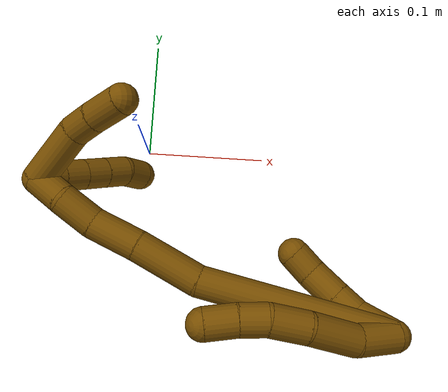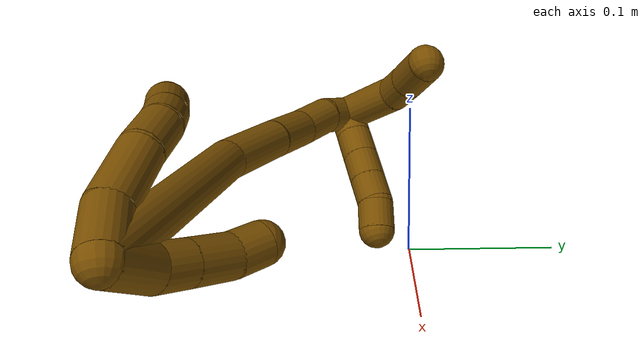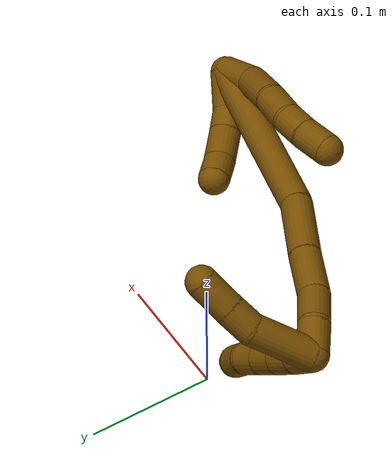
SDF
<sdf version="1.7">
 <world name="default">
  <model name="12">
   <static>0</static>
   <link name="12">
    <collision name="collision-cylinder-e_1_2_8">
     <pose>-0.006048 -0.001485 0.015662 0.094556 -0.367036 -0.017563</pose>
     <geometry><cylinder><radius>0.0125</radius><length>0.03371</length></cylinder></geometry>
     <surface>
      <friction><ode><mu>1.16</mu><mu2>1.16</mu2><slip1>0</slip1><slip2>0</slip2></ode></friction>
      <contact><ode><kp>1e+06</kp><kd>1</kd><max_vel>0</max_vel><min_depth>0.001</min_depth></ode></contact>
     </surface>
    </collision>
    <visual name="visual-cylinder-e_1_2_8">
     <pose>-0.006048 -0.001485 0.015662 0.094556 -0.367036 -0.017563</pose>
     <geometry><cylinder><radius>0.0125</radius><length>0.03371</length></cylinder></geometry>
     <material><ambient>0.466667 0.301961 0 1</ambient></material>
    </visual>
    <collision name="collision-cylinder-e_2_8_9">
     <pose>-0.020369 0.001399 0.049469 -0.23634 -0.417221 0.050255</pose>
     <geometry><cylinder><radius>0.0125</radius><length>0.040829</length></cylinder></geometry>
     <surface>
      <friction><ode><mu>1.16</mu><mu2>1.16</mu2><slip1>0</slip1><slip2>0</slip2></ode></friction>
      <contact><ode><kp>1e+06</kp><kd>1</kd><max_vel>0</max_vel><min_depth>0.001</min_depth></ode></contact>
     </surface>
    </collision>
    <visual name="visual-cylinder-e_2_8_9">
     <pose>-0.020369 0.001399 0.049469 -0.23634 -0.417221 0.050255</pose>
     <geometry><cylinder><radius>0.0125</radius><length>0.040829</length></cylinder></geometry>
     <material><ambient>0.466667 0.301961 0 1</ambient></material>
    </visual>
    <collision name="collision-cylinder-e_3_9_10">
     <pose>-0.037101 0.007525 0.079528 -0.14632 -0.612325 0.046326</pose>
     <geometry><cylinder><radius>0.0125</radius><length>0.029434</length></cylinder></geometry>
     <surface>
      <friction><ode><mu>1.16</mu><mu2>1.16</mu2><slip1>0</slip1><slip2>0</slip2></ode></friction>
      <contact><ode><kp>1e+06</kp><kd>1</kd><max_vel>0</max_vel><min_depth>0.001</min_depth></ode></contact>
     </surface>
    </collision>
    <visual name="visual-cylinder-e_3_9_10">
     <pose>-0.037101 0.007525 0.079528 -0.14632 -0.612325 0.046326</pose>
     <geometry><cylinder><radius>0.0125</radius><length>0.029434</length></cylinder></geometry>
     <material><ambient>0.466667 0.301961 0 1</ambient></material>
    </visual>
    <collision name="collision-cylinder-e_4_10_11">
     <pose>-0.052371 0.008098 0.099502 0.145734 -0.696453 -0.052986</pose>
     <geometry><cylinder><radius>0.0125</radius><length>0.021237</length></cylinder></geometry>
     <surface>
      <friction><ode><mu>1.16</mu><mu2>1.16</mu2><slip1>0</slip1><slip2>0</slip2></ode></friction>
      <contact><ode><kp>1e+06</kp><kd>1</kd><max_vel>0</max_vel><min_depth>0.001</min_depth></ode></contact>
     </surface>
    </collision>
    <visual name="visual-cylinder-e_4_10_11">
     <pose>-0.052371 0.008098 0.099502 0.145734 -0.696453 -0.052986</pose>
     <geometry><cylinder><radius>0.0125</radius><length>0.021237</length></cylinder></geometry>
     <material><ambient>0.466667 0.301961 0 1</ambient></material>
    </visual>
    <collision name="collision-cylinder-e_5_11_6">
     <pose>-0.066864 0.004224 0.11691 0.280277 -0.668327 -0.097872</pose>
     <geometry><cylinder><radius>0.0125</radius><length>0.02479</length></cylinder></geometry>
     <surface>
      <friction><ode><mu>1.16</mu><mu2>1.16</mu2><slip1>0</slip1><slip2>0</slip2></ode></friction>
      <contact><ode><kp>1e+06</kp><kd>1</kd><max_vel>0</max_vel><min_depth>0.001</min_depth></ode></contact>
     </surface>
    </collision>
    <visual name="visual-cylinder-e_5_11_6">
     <pose>-0.066864 0.004224 0.11691 0.280277 -0.668327 -0.097872</pose>
     <geometry><cylinder><radius>0.0125</radius><length>0.02479</length></cylinder></geometry>
     <material><ambient>0.466667 0.301961 0 1</ambient></material>
    </visual>
    <collision name="collision-cylinder-e_1_2_12">
     <pose>-0.015594 0.003884 0.0028 -0.94623 -1.27291 0.723341</pose>
     <geometry><cylinder><radius>0.0125</radius><length>0.032625</length></cylinder></geometry>
     <surface>
      <friction><ode><mu>1.16</mu><mu2>1.16</mu2><slip1>0</slip1><slip2>0</slip2></ode></friction>
      <contact><ode><kp>1e+06</kp><kd>1</kd><max_vel>0</max_vel><min_depth>0.001</min_depth></ode></contact>
     </surface>
    </collision>
    <visual name="visual-cylinder-e_1_2_12">
     <pose>-0.015594 0.003884 0.0028 -0.94623 -1.27291 0.723341</pose>
     <geometry><cylinder><radius>0.0125</radius><length>0.032625</length></cylinder></geometry>
     <material><ambient>0.466667 0.301961 0 1</ambient></material>
    </visual>
    <collision name="collision-cylinder-e_2_12_13">
     <pose>-0.039312 0.013032 0.008618 -1.05021 -0.929249 0.565228</pose>
     <geometry><cylinder><radius>0.0125</radius><length>0.020281</length></cylinder></geometry>
     <surface>
      <friction><ode><mu>1.16</mu><mu2>1.16</mu2><slip1>0</slip1><slip2>0</slip2></ode></friction>
      <contact><ode><kp>1e+06</kp><kd>1</kd><max_vel>0</max_vel><min_depth>0.001</min_depth></ode></contact>
     </surface>
    </collision>
    <visual name="visual-cylinder-e_2_12_13">
     <pose>-0.039312 0.013032 0.008618 -1.05021 -0.929249 0.565228</pose>
     <geometry><cylinder><radius>0.0125</radius><length>0.020281</length></cylinder></geometry>
     <material><ambient>0.466667 0.301961 0 1</ambient></material>
    </visual>
    <collision name="collision-cylinder-e_3_13_14">
     <pose>-0.058026 0.025553 0.015687 -1.0616 -0.90536 0.556186</pose>
     <geometry><cylinder><radius>0.0125</radius><length>0.026923</length></cylinder></geometry>
     <surface>
      <friction><ode><mu>1.16</mu><mu2>1.16</mu2><slip1>0</slip1><slip2>0</slip2></ode></friction>
      <contact><ode><kp>1e+06</kp><kd>1</kd><max_vel>0</max_vel><min_depth>0.001</min_depth></ode></contact>
     </surface>
    </collision>
    <visual name="visual-cylinder-e_3_13_14">
     <pose>-0.058026 0.025553 0.015687 -1.0616 -0.90536 0.556186</pose>
     <geometry><cylinder><radius>0.0125</radius><length>0.026923</length></cylinder></geometry>
     <material><ambient>0.466667 0.301961 0 1</ambient></material>
    </visual>
    <collision name="collision-cylinder-e_4_14_5">
     <pose>-0.074991 0.039307 0.024081 -0.981608 -0.684394 0.376231</pose>
     <geometry><cylinder><radius>0.0125</radius><length>0.020172</length></cylinder></geometry>
     <surface>
      <friction><ode><mu>1.16</mu><mu2>1.16</mu2><slip1>0</slip1><slip2>0</slip2></ode></friction>
      <contact><ode><kp>1e+06</kp><kd>1</kd><max_vel>0</max_vel><min_depth>0.001</min_depth></ode></contact>
     </surface>
    </collision>
    <visual name="visual-cylinder-e_4_14_5">
     <pose>-0.074991 0.039307 0.024081 -0.981608 -0.684394 0.376231</pose>
     <geometry><cylinder><radius>0.0125</radius><length>0.020172</length></cylinder></geometry>
     <material><ambient>0.466667 0.301961 0 1</ambient></material>
    </visual>
    <collision name="collision-cylinder-e_1_2_15">
     <pose>-0.055351 0.010695 0.050537 -0.208543 -0.819922 0.090897</pose>
     <geometry><cylinder><radius>0.0125</radius><length>0.151421</length></cylinder></geometry>
     <surface>
      <friction><ode><mu>1.16</mu><mu2>1.16</mu2><slip1>0</slip1><slip2>0</slip2></ode></friction>
      <contact><ode><kp>1e+06</kp><kd>1</kd><max_vel>0</max_vel><min_depth>0.001</min_depth></ode></contact>
     </surface>
    </collision>
    <visual name="visual-cylinder-e_1_2_15">
     <pose>-0.055351 0.010695 0.050537 -0.208543 -0.819922 0.090897</pose>
     <geometry><cylinder><radius>0.0125</radius><length>0.151421</length></cylinder></geometry>
     <material><ambient>0.466667 0.301961 0 1</ambient></material>
    </visual>
    <collision name="collision-cylinder-e_2_15_16">
     <pose>-0.129869 0.03133 0.116325 -0.577625 -0.811089 0.253763</pose>
     <geometry><cylinder><radius>0.0125</radius><length>0.052868</length></cylinder></geometry>
     <surface>
      <friction><ode><mu>1.16</mu><mu2>1.16</mu2><slip1>0</slip1><slip2>0</slip2></ode></friction>
      <contact><ode><kp>1e+06</kp><kd>1</kd><max_vel>0</max_vel><min_depth>0.001</min_depth></ode></contact>
     </surface>
    </collision>
    <visual name="visual-cylinder-e_2_15_16">
     <pose>-0.129869 0.03133 0.116325 -0.577625 -0.811089 0.253763</pose>
     <geometry><cylinder><radius>0.0125</radius><length>0.052868</length></cylinder></geometry>
     <material><ambient>0.466667 0.301961 0 1</ambient></material>
    </visual>
    <collision name="collision-cylinder-e_3_16_17">
     <pose>-0.163662 0.047363 0.142501 -0.508711 -0.86332 0.23838</pose>
     <geometry><cylinder><radius>0.0125</radius><length>0.038493</length></cylinder></geometry>
     <surface>
      <friction><ode><mu>1.16</mu><mu2>1.16</mu2><slip1>0</slip1><slip2>0</slip2></ode></friction>
      <contact><ode><kp>1e+06</kp><kd>1</kd><max_vel>0</max_vel><min_depth>0.001</min_depth></ode></contact>
     </surface>
    </collision>
    <visual name="visual-cylinder-e_3_16_17">
     <pose>-0.163662 0.047363 0.142501 -0.508711 -0.86332 0.23838</pose>
     <geometry><cylinder><radius>0.0125</radius><length>0.038493</length></cylinder></geometry>
     <material><ambient>0.466667 0.301961 0 1</ambient></material>
    </visual>
    <collision name="collision-cylinder-e_4_17_18">
     <pose>-0.188081 0.061283 0.162273 -0.724401 -0.69211 0.271567</pose>
     <geometry><cylinder><radius>0.0125</radius><length>0.030686</length></cylinder></geometry>
     <surface>
      <friction><ode><mu>1.16</mu><mu2>1.16</mu2><slip1>0</slip1><slip2>0</slip2></ode></friction>
      <contact><ode><kp>1e+06</kp><kd>1</kd><max_vel>0</max_vel><min_depth>0.001</min_depth></ode></contact>
     </surface>
    </collision>
    <visual name="visual-cylinder-e_4_17_18">
     <pose>-0.188081 0.061283 0.162273 -0.724401 -0.69211 0.271567</pose>
     <geometry><cylinder><radius>0.0125</radius><length>0.030686</length></cylinder></geometry>
     <material><ambient>0.466667 0.301961 0 1</ambient></material>
    </visual>
    <collision name="collision-cylinder-e_5_18_1">
     <pose>-0.208491 0.075266 0.176153 -0.885185 -0.928129 0.465835</pose>
     <geometry><cylinder><radius>0.0125</radius><length>0.026531</length></cylinder></geometry>
     <surface>
      <friction><ode><mu>1.16</mu><mu2>1.16</mu2><slip1>0</slip1><slip2>0</slip2></ode></friction>
      <contact><ode><kp>1e+06</kp><kd>1</kd><max_vel>0</max_vel><min_depth>0.001</min_depth></ode></contact>
     </surface>
    </collision>
    <visual name="visual-cylinder-e_5_18_1">
     <pose>-0.208491 0.075266 0.176153 -0.885185 -0.928129 0.465835</pose>
     <geometry><cylinder><radius>0.0125</radius><length>0.026531</length></cylinder></geometry>
     <material><ambient>0.466667 0.301961 0 1</ambient></material>
    </visual>
    <collision name="collision-cylinder-e_1_1_19">
     <pose>-0.219242 0.082706 0.171271 -3.0126 -0.013169 0.203202</pose>
     <geometry><cylinder><radius>0.0125</radius><length>0.02</length></cylinder></geometry>
     <surface>
      <friction><ode><mu>1.16</mu><mu2>1.16</mu2><slip1>0</slip1><slip2>0</slip2></ode></friction>
      <contact><ode><kp>1e+06</kp><kd>1</kd><max_vel>0</max_vel><min_depth>0.001</min_depth></ode></contact>
     </surface>
    </collision>
    <visual name="visual-cylinder-e_1_1_19">
     <pose>-0.219242 0.082706 0.171271 -3.0126 -0.013169 0.203202</pose>
     <geometry><cylinder><radius>0.0125</radius><length>0.02</length></cylinder></geometry>
     <material><ambient>0.466667 0.301961 0 1</ambient></material>
    </visual>
    <collision name="collision-cylinder-e_2_19_20">
     <pose>-0.218977 0.085094 0.151423 -3.03111 0.039636 -0.688352</pose>
     <geometry><cylinder><radius>0.0125</radius><length>0.02</length></cylinder></geometry>
     <surface>
      <friction><ode><mu>1.16</mu><mu2>1.16</mu2><slip1>0</slip1><slip2>0</slip2></ode></friction>
      <contact><ode><kp>1e+06</kp><kd>1</kd><max_vel>0</max_vel><min_depth>0.001</min_depth></ode></contact>
     </surface>
    </collision>
    <visual name="visual-cylinder-e_2_19_20">
     <pose>-0.218977 0.085094 0.151423 -3.03111 0.039636 -0.688352</pose>
     <geometry><cylinder><radius>0.0125</radius><length>0.02</length></cylinder></geometry>
     <material><ambient>0.466667 0.301961 0 1</ambient></material>
    </visual>
    <collision name="collision-cylinder-e_3_20_21">
     <pose>-0.218142 0.087315 0.131565 -3.02925 0.043886 -0.744222</pose>
     <geometry><cylinder><radius>0.0125</radius><length>0.02</length></cylinder></geometry>
     <surface>
      <friction><ode><mu>1.16</mu><mu2>1.16</mu2><slip1>0</slip1><slip2>0</slip2></ode></friction>
      <contact><ode><kp>1e+06</kp><kd>1</kd><max_vel>0</max_vel><min_depth>0.001</min_depth></ode></contact>
     </surface>
    </collision>
    <visual name="visual-cylinder-e_3_20_21">
     <pose>-0.218142 0.087315 0.131565 -3.02925 0.043886 -0.744222</pose>
     <geometry><cylinder><radius>0.0125</radius><length>0.02</length></cylinder></geometry>
     <material><ambient>0.466667 0.301961 0 1</ambient></material>
    </visual>
    <collision name="collision-cylinder-e_4_21_22">
     <pose>-0.217191 0.089565 0.111715 -3.02825 0.051328 -0.849832</pose>
     <geometry><cylinder><radius>0.0125</radius><length>0.02</length></cylinder></geometry>
     <surface>
      <friction><ode><mu>1.16</mu><mu2>1.16</mu2><slip1>0</slip1><slip2>0</slip2></ode></friction>
      <contact><ode><kp>1e+06</kp><kd>1</kd><max_vel>0</max_vel><min_depth>0.001</min_depth></ode></contact>
     </surface>
    </collision>
    <visual name="visual-cylinder-e_4_21_22">
     <pose>-0.217191 0.089565 0.111715 -3.02825 0.051328 -0.849832</pose>
     <geometry><cylinder><radius>0.0125</radius><length>0.02</length></cylinder></geometry>
     <material><ambient>0.466667 0.301961 0 1</ambient></material>
    </visual>
    <collision name="collision-cylinder-e_5_22_4">
     <pose>-0.217721 0.08925 0.091952 2.99588 -0.104557 -1.24399</pose>
     <geometry><cylinder><radius>0.0125</radius><length>0.02</length></cylinder></geometry>
     <surface>
      <friction><ode><mu>1.16</mu><mu2>1.16</mu2><slip1>0</slip1><slip2>0</slip2></ode></friction>
      <contact><ode><kp>1e+06</kp><kd>1</kd><max_vel>0</max_vel><min_depth>0.001</min_depth></ode></contact>
     </surface>
    </collision>
    <visual name="visual-cylinder-e_5_22_4">
     <pose>-0.217721 0.08925 0.091952 2.99588 -0.104557 -1.24399</pose>
     <geometry><cylinder><radius>0.0125</radius><length>0.02</length></cylinder></geometry>
     <material><ambient>0.466667 0.301961 0 1</ambient></material>
    </visual>
    <collision name="collision-cylinder-e_1_1_23">
     <pose>-0.205396 0.101667 0.17584 -1.82896 0.579787 -0.738999</pose>
     <geometry><cylinder><radius>0.0125</radius><length>0.050066</length></cylinder></geometry>
     <surface>
      <friction><ode><mu>1.16</mu><mu2>1.16</mu2><slip1>0</slip1><slip2>0</slip2></ode></friction>
      <contact><ode><kp>1e+06</kp><kd>1</kd><max_vel>0</max_vel><min_depth>0.001</min_depth></ode></contact>
     </surface>
    </collision>
    <visual name="visual-cylinder-e_1_1_23">
     <pose>-0.205396 0.101667 0.17584 -1.82896 0.579787 -0.738999</pose>
     <geometry><cylinder><radius>0.0125</radius><length>0.050066</length></cylinder></geometry>
     <material><ambient>0.466667 0.301961 0 1</ambient></material>
    </visual>
    <collision name="collision-cylinder-e_2_23_24">
     <pose>-0.183104 0.128154 0.168228 -1.9191 0.912217 -1.22159</pose>
     <geometry><cylinder><radius>0.0125</radius><length>0.021692</length></cylinder></geometry>
     <surface>
      <friction><ode><mu>1.16</mu><mu2>1.16</mu2><slip1>0</slip1><slip2>0</slip2></ode></friction>
      <contact><ode><kp>1e+06</kp><kd>1</kd><max_vel>0</max_vel><min_depth>0.001</min_depth></ode></contact>
     </surface>
    </collision>
    <visual name="visual-cylinder-e_2_23_24">
     <pose>-0.183104 0.128154 0.168228 -1.9191 0.912217 -1.22159</pose>
     <geometry><cylinder><radius>0.0125</radius><length>0.021692</length></cylinder></geometry>
     <material><ambient>0.466667 0.301961 0 1</ambient></material>
    </visual>
    <collision name="collision-cylinder-e_3_24_3">
     <pose>-0.162956 0.141876 0.162874 -1.96227 0.960309 -1.32288</pose>
     <geometry><cylinder><radius>0.0125</radius><length>0.028242</length></cylinder></geometry>
     <surface>
      <friction><ode><mu>1.16</mu><mu2>1.16</mu2><slip1>0</slip1><slip2>0</slip2></ode></friction>
      <contact><ode><kp>1e+06</kp><kd>1</kd><max_vel>0</max_vel><min_depth>0.001</min_depth></ode></contact>
     </surface>
    </collision>
    <visual name="visual-cylinder-e_3_24_3">
     <pose>-0.162956 0.141876 0.162874 -1.96227 0.960309 -1.32288</pose>
     <geometry><cylinder><radius>0.0125</radius><length>0.028242</length></cylinder></geometry>
     <material><ambient>0.466667 0.301961 0 1</ambient></material>
    </visual>
    <collision name="collision-sphere-3">
     <pose>-0.151386 0.149359 0.159785 0 -0 0</pose>
     <geometry><sphere><radius>0.0125</radius></sphere></geometry>
     <surface>
      <friction><ode><mu>1.16</mu><mu2>1.16</mu2><slip1>0</slip1><slip2>0</slip2></ode></friction>
      <contact><ode><kp>1e+06</kp><kd>1</kd><max_vel>0</max_vel><min_depth>0.001</min_depth></ode></contact>
     </surface>
    </collision>
    <visual name="visual-sphere-3">
     <pose>-0.151386 0.149359 0.159785 0 -0 0</pose>
     <geometry><sphere><radius>0.0125</radius></sphere></geometry>
     <material><ambient>0.466667 0.301961 0 1</ambient></material>
    </visual>
    <collision name="collision-sphere-24">
     <pose>-0.174527 0.134394 0.165963 0 -0 0</pose>
     <geometry><sphere><radius>0.0125</radius></sphere></geometry>
     <surface>
      <friction><ode><mu>1.16</mu><mu2>1.16</mu2><slip1>0</slip1><slip2>0</slip2></ode></friction>
      <contact><ode><kp>1e+06</kp><kd>1</kd><max_vel>0</max_vel><min_depth>0.001</min_depth></ode></contact>
     </surface>
    </collision>
    <visual name="visual-sphere-24">
     <pose>-0.174527 0.134394 0.165963 0 -0 0</pose>
     <geometry><sphere><radius>0.0125</radius></sphere></geometry>
     <material><ambient>0.466667 0.301961 0 1</ambient></material>
    </visual>
    <collision name="collision-sphere-23">
     <pose>-0.191682 0.121915 0.170494 0 -0 0</pose>
     <geometry><sphere><radius>0.0125</radius></sphere></geometry>
     <surface>
      <friction><ode><mu>1.16</mu><mu2>1.16</mu2><slip1>0</slip1><slip2>0</slip2></ode></friction>
      <contact><ode><kp>1e+06</kp><kd>1</kd><max_vel>0</max_vel><min_depth>0.001</min_depth></ode></contact>
     </surface>
    </collision>
    <visual name="visual-sphere-23">
     <pose>-0.191682 0.121915 0.170494 0 -0 0</pose>
     <geometry><sphere><radius>0.0125</radius></sphere></geometry>
     <material><ambient>0.466667 0.301961 0 1</ambient></material>
    </visual>
    <collision name="collision-sphere-4">
     <pose>-0.218765 0.087806 0.082112 0 -0 0</pose>
     <geometry><sphere><radius>0.0125</radius></sphere></geometry>
     <surface>
      <friction><ode><mu>1.16</mu><mu2>1.16</mu2><slip1>0</slip1><slip2>0</slip2></ode></friction>
      <contact><ode><kp>1e+06</kp><kd>1</kd><max_vel>0</max_vel><min_depth>0.001</min_depth></ode></contact>
     </surface>
    </collision>
    <visual name="visual-sphere-4">
     <pose>-0.218765 0.087806 0.082112 0 -0 0</pose>
     <geometry><sphere><radius>0.0125</radius></sphere></geometry>
     <material><ambient>0.466667 0.301961 0 1</ambient></material>
    </visual>
    <collision name="collision-sphere-22">
     <pose>-0.216678 0.090694 0.101792 0 -0 0</pose>
     <geometry><sphere><radius>0.0125</radius></sphere></geometry>
     <surface>
      <friction><ode><mu>1.16</mu><mu2>1.16</mu2><slip1>0</slip1><slip2>0</slip2></ode></friction>
      <contact><ode><kp>1e+06</kp><kd>1</kd><max_vel>0</max_vel><min_depth>0.001</min_depth></ode></contact>
     </surface>
    </collision>
    <visual name="visual-sphere-22">
     <pose>-0.216678 0.090694 0.101792 0 -0 0</pose>
     <geometry><sphere><radius>0.0125</radius></sphere></geometry>
     <material><ambient>0.466667 0.301961 0 1</ambient></material>
    </visual>
    <collision name="collision-sphere-21">
     <pose>-0.217704 0.088435 0.121637 0 -0 0</pose>
     <geometry><sphere><radius>0.0125</radius></sphere></geometry>
     <surface>
      <friction><ode><mu>1.16</mu><mu2>1.16</mu2><slip1>0</slip1><slip2>0</slip2></ode></friction>
      <contact><ode><kp>1e+06</kp><kd>1</kd><max_vel>0</max_vel><min_depth>0.001</min_depth></ode></contact>
     </surface>
    </collision>
    <visual name="visual-sphere-21">
     <pose>-0.217704 0.088435 0.121637 0 -0 0</pose>
     <geometry><sphere><radius>0.0125</radius></sphere></geometry>
     <material><ambient>0.466667 0.301961 0 1</ambient></material>
    </visual>
    <collision name="collision-sphere-20">
     <pose>-0.218581 0.086195 0.141492 0 -0 0</pose>
     <geometry><sphere><radius>0.0125</radius></sphere></geometry>
     <surface>
      <friction><ode><mu>1.16</mu><mu2>1.16</mu2><slip1>0</slip1><slip2>0</slip2></ode></friction>
      <contact><ode><kp>1e+06</kp><kd>1</kd><max_vel>0</max_vel><min_depth>0.001</min_depth></ode></contact>
     </surface>
    </collision>
    <visual name="visual-sphere-20">
     <pose>-0.218581 0.086195 0.141492 0 -0 0</pose>
     <geometry><sphere><radius>0.0125</radius></sphere></geometry>
     <material><ambient>0.466667 0.301961 0 1</ambient></material>
    </visual>
    <collision name="collision-sphere-6">
     <pose>-0.074545 0.001533 0.126258 0 -0 0</pose>
     <geometry><sphere><radius>0.0125</radius></sphere></geometry>
     <surface>
      <friction><ode><mu>1.16</mu><mu2>1.16</mu2><slip1>0</slip1><slip2>0</slip2></ode></friction>
      <contact><ode><kp>1e+06</kp><kd>1</kd><max_vel>0</max_vel><min_depth>0.001</min_depth></ode></contact>
     </surface>
    </collision>
    <visual name="visual-sphere-6">
     <pose>-0.074545 0.001533 0.126258 0 -0 0</pose>
     <geometry><sphere><radius>0.0125</radius></sphere></geometry>
     <material><ambient>0.466667 0.301961 0 1</ambient></material>
    </visual>
    <collision name="collision-sphere-11">
     <pose>-0.059183 0.006915 0.107561 0 -0 0</pose>
     <geometry><sphere><radius>0.0125</radius></sphere></geometry>
     <surface>
      <friction><ode><mu>1.16</mu><mu2>1.16</mu2><slip1>0</slip1><slip2>0</slip2></ode></friction>
      <contact><ode><kp>1e+06</kp><kd>1</kd><max_vel>0</max_vel><min_depth>0.001</min_depth></ode></contact>
     </surface>
    </collision>
    <visual name="visual-sphere-11">
     <pose>-0.059183 0.006915 0.107561 0 -0 0</pose>
     <geometry><sphere><radius>0.0125</radius></sphere></geometry>
     <material><ambient>0.466667 0.301961 0 1</ambient></material>
    </visual>
    <collision name="collision-sphere-10">
     <pose>-0.045559 0.009281 0.091442 0 -0 0</pose>
     <geometry><sphere><radius>0.0125</radius></sphere></geometry>
     <surface>
      <friction><ode><mu>1.16</mu><mu2>1.16</mu2><slip1>0</slip1><slip2>0</slip2></ode></friction>
      <contact><ode><kp>1e+06</kp><kd>1</kd><max_vel>0</max_vel><min_depth>0.001</min_depth></ode></contact>
     </surface>
    </collision>
    <visual name="visual-sphere-10">
     <pose>-0.045559 0.009281 0.091442 0 -0 0</pose>
     <geometry><sphere><radius>0.0125</radius></sphere></geometry>
     <material><ambient>0.466667 0.301961 0 1</ambient></material>
    </visual>
    <collision name="collision-sphere-9">
     <pose>-0.028642 0.005769 0.067614 0 -0 0</pose>
     <geometry><sphere><radius>0.0125</radius></sphere></geometry>
     <surface>
      <friction><ode><mu>1.16</mu><mu2>1.16</mu2><slip1>0</slip1><slip2>0</slip2></ode></friction>
      <contact><ode><kp>1e+06</kp><kd>1</kd><max_vel>0</max_vel><min_depth>0.001</min_depth></ode></contact>
     </surface>
    </collision>
    <visual name="visual-sphere-9">
     <pose>-0.028642 0.005769 0.067614 0 -0 0</pose>
     <geometry><sphere><radius>0.0125</radius></sphere></geometry>
     <material><ambient>0.466667 0.301961 0 1</ambient></material>
    </visual>
    <collision name="collision-sphere-2">
     <geometry><sphere><radius>0.0125</radius></sphere></geometry>
     <surface>
      <friction><ode><mu>1.16</mu><mu2>1.16</mu2><slip1>0</slip1><slip2>0</slip2></ode></friction>
      <contact><ode><kp>1e+06</kp><kd>1</kd><max_vel>0</max_vel><min_depth>0.001</min_depth></ode></contact>
     </surface>
    </collision>
    <visual name="visual-sphere-2">
     <geometry><sphere><radius>0.0125</radius></sphere></geometry>
     <material><ambient>0.466667 0.301961 0 1</ambient></material>
    </visual>
    <collision name="collision-sphere-19">
     <pose>-0.219374 0.083992 0.161355 0 -0 0</pose>
     <geometry><sphere><radius>0.0125</radius></sphere></geometry>
     <surface>
      <friction><ode><mu>1.16</mu><mu2>1.16</mu2><slip1>0</slip1><slip2>0</slip2></ode></friction>
      <contact><ode><kp>1e+06</kp><kd>1</kd><max_vel>0</max_vel><min_depth>0.001</min_depth></ode></contact>
     </surface>
    </collision>
    <visual name="visual-sphere-19">
     <pose>-0.219374 0.083992 0.161355 0 -0 0</pose>
     <geometry><sphere><radius>0.0125</radius></sphere></geometry>
     <material><ambient>0.466667 0.301961 0 1</ambient></material>
    </visual>
    <collision name="collision-sphere-8">
     <pose>-0.012097 -0.002971 0.031324 0 -0 0</pose>
     <geometry><sphere><radius>0.0125</radius></sphere></geometry>
     <surface>
      <friction><ode><mu>1.16</mu><mu2>1.16</mu2><slip1>0</slip1><slip2>0</slip2></ode></friction>
      <contact><ode><kp>1e+06</kp><kd>1</kd><max_vel>0</max_vel><min_depth>0.001</min_depth></ode></contact>
     </surface>
    </collision>
    <visual name="visual-sphere-8">
     <pose>-0.012097 -0.002971 0.031324 0 -0 0</pose>
     <geometry><sphere><radius>0.0125</radius></sphere></geometry>
     <material><ambient>0.466667 0.301961 0 1</ambient></material>
    </visual>
    <collision name="collision-sphere-12">
     <pose>-0.031188 0.007768 0.005599 0 -0 0</pose>
     <geometry><sphere><radius>0.0125</radius></sphere></geometry>
     <surface>
      <friction><ode><mu>1.16</mu><mu2>1.16</mu2><slip1>0</slip1><slip2>0</slip2></ode></friction>
      <contact><ode><kp>1e+06</kp><kd>1</kd><max_vel>0</max_vel><min_depth>0.001</min_depth></ode></contact>
     </surface>
    </collision>
    <visual name="visual-sphere-12">
     <pose>-0.031188 0.007768 0.005599 0 -0 0</pose>
     <geometry><sphere><radius>0.0125</radius></sphere></geometry>
     <material><ambient>0.466667 0.301961 0 1</ambient></material>
    </visual>
    <collision name="collision-sphere-13">
     <pose>-0.047436 0.018297 0.011636 0 -0 0</pose>
     <geometry><sphere><radius>0.0125</radius></sphere></geometry>
     <surface>
      <friction><ode><mu>1.16</mu><mu2>1.16</mu2><slip1>0</slip1><slip2>0</slip2></ode></friction>
      <contact><ode><kp>1e+06</kp><kd>1</kd><max_vel>0</max_vel><min_depth>0.001</min_depth></ode></contact>
     </surface>
    </collision>
    <visual name="visual-sphere-13">
     <pose>-0.047436 0.018297 0.011636 0 -0 0</pose>
     <geometry><sphere><radius>0.0125</radius></sphere></geometry>
     <material><ambient>0.466667 0.301961 0 1</ambient></material>
    </visual>
    <collision name="collision-sphere-14">
     <pose>-0.068615 0.03281 0.019739 0 -0 0</pose>
     <geometry><sphere><radius>0.0125</radius></sphere></geometry>
     <surface>
      <friction><ode><mu>1.16</mu><mu2>1.16</mu2><slip1>0</slip1><slip2>0</slip2></ode></friction>
      <contact><ode><kp>1e+06</kp><kd>1</kd><max_vel>0</max_vel><min_depth>0.001</min_depth></ode></contact>
     </surface>
    </collision>
    <visual name="visual-sphere-14">
     <pose>-0.068615 0.03281 0.019739 0 -0 0</pose>
     <geometry><sphere><radius>0.0125</radius></sphere></geometry>
     <material><ambient>0.466667 0.301961 0 1</ambient></material>
    </visual>
    <collision name="collision-sphere-5">
     <pose>-0.081368 0.045804 0.028424 0 -0 0</pose>
     <geometry><sphere><radius>0.0125</radius></sphere></geometry>
     <surface>
      <friction><ode><mu>1.16</mu><mu2>1.16</mu2><slip1>0</slip1><slip2>0</slip2></ode></friction>
      <contact><ode><kp>1e+06</kp><kd>1</kd><max_vel>0</max_vel><min_depth>0.001</min_depth></ode></contact>
     </surface>
    </collision>
    <visual name="visual-sphere-5">
     <pose>-0.081368 0.045804 0.028424 0 -0 0</pose>
     <geometry><sphere><radius>0.0125</radius></sphere></geometry>
     <material><ambient>0.466667 0.301961 0 1</ambient></material>
    </visual>
    <collision name="collision-sphere-15">
     <pose>-0.110703 0.021389 0.101073 0 -0 0</pose>
     <geometry><sphere><radius>0.0125</radius></sphere></geometry>
     <surface>
      <friction><ode><mu>1.16</mu><mu2>1.16</mu2><slip1>0</slip1><slip2>0</slip2></ode></friction>
      <contact><ode><kp>1e+06</kp><kd>1</kd><max_vel>0</max_vel><min_depth>0.001</min_depth></ode></contact>
     </surface>
    </collision>
    <visual name="visual-sphere-15">
     <pose>-0.110703 0.021389 0.101073 0 -0 0</pose>
     <geometry><sphere><radius>0.0125</radius></sphere></geometry>
     <material><ambient>0.466667 0.301961 0 1</ambient></material>
    </visual>
    <collision name="collision-sphere-16">
     <pose>-0.149034 0.041271 0.131577 0 -0 0</pose>
     <geometry><sphere><radius>0.0125</radius></sphere></geometry>
     <surface>
      <friction><ode><mu>1.16</mu><mu2>1.16</mu2><slip1>0</slip1><slip2>0</slip2></ode></friction>
      <contact><ode><kp>1e+06</kp><kd>1</kd><max_vel>0</max_vel><min_depth>0.001</min_depth></ode></contact>
     </surface>
    </collision>
    <visual name="visual-sphere-16">
     <pose>-0.149034 0.041271 0.131577 0 -0 0</pose>
     <geometry><sphere><radius>0.0125</radius></sphere></geometry>
     <material><ambient>0.466667 0.301961 0 1</ambient></material>
    </visual>
    <collision name="collision-sphere-17">
     <pose>-0.178289 0.053455 0.153426 0 -0 0</pose>
     <geometry><sphere><radius>0.0125</radius></sphere></geometry>
     <surface>
      <friction><ode><mu>1.16</mu><mu2>1.16</mu2><slip1>0</slip1><slip2>0</slip2></ode></friction>
      <contact><ode><kp>1e+06</kp><kd>1</kd><max_vel>0</max_vel><min_depth>0.001</min_depth></ode></contact>
     </surface>
    </collision>
    <visual name="visual-sphere-17">
     <pose>-0.178289 0.053455 0.153426 0 -0 0</pose>
     <geometry><sphere><radius>0.0125</radius></sphere></geometry>
     <material><ambient>0.466667 0.301961 0 1</ambient></material>
    </visual>
    <collision name="collision-sphere-18">
     <pose>-0.197872 0.069112 0.171119 0 -0 0</pose>
     <geometry><sphere><radius>0.0125</radius></sphere></geometry>
     <surface>
      <friction><ode><mu>1.16</mu><mu2>1.16</mu2><slip1>0</slip1><slip2>0</slip2></ode></friction>
      <contact><ode><kp>1e+06</kp><kd>1</kd><max_vel>0</max_vel><min_depth>0.001</min_depth></ode></contact>
     </surface>
    </collision>
    <visual name="visual-sphere-18">
     <pose>-0.197872 0.069112 0.171119 0 -0 0</pose>
     <geometry><sphere><radius>0.0125</radius></sphere></geometry>
     <material><ambient>0.466667 0.301961 0 1</ambient></material>
    </visual>
    <collision name="collision-sphere-1">
     <pose>-0.21911 0.08142 0.181187 0 -0 0</pose>
     <geometry><sphere><radius>0.0125</radius></sphere></geometry>
     <surface>
      <friction><ode><mu>1.16</mu><mu2>1.16</mu2><slip1>0</slip1><slip2>0</slip2></ode></friction>
      <contact><ode><kp>1e+06</kp><kd>1</kd><max_vel>0</max_vel><min_depth>0.001</min_depth></ode></contact>
     </surface>
    </collision>
    <visual name="visual-sphere-1">
     <pose>-0.21911 0.08142 0.181187 0 -0 0</pose>
     <geometry><sphere><radius>0.0125</radius></sphere></geometry>
     <material><ambient>0.466667 0.301961 0 1</ambient></material>
    </visual>
    <inertial>
     <pose>-0.110415 0.042545 0.093634 0 -0 0</pose>
     <mass>0.75</mass>
     <inertia>
      <ixx>0.000241</ixx>
      <ixy>0</ixy>
      <ixz>0</ixz>
      <iyy>0.000371</iyy>
      <iyz>0</iyz>
      <izz>0.000188</izz>
     </inertia>
    </inertial>
   </link>
   <pose>0.200804 -0.144544 0.081193 0.366779 -0.744457 -0.315664</pose>
  </model>
 </world>
</sdf>
